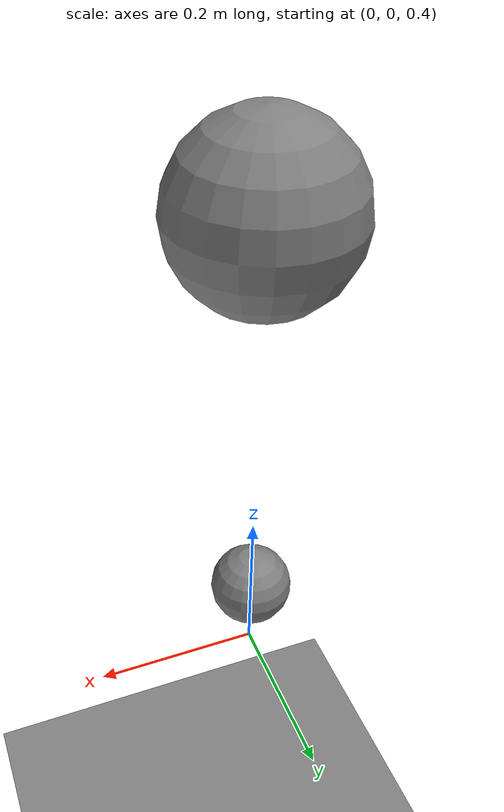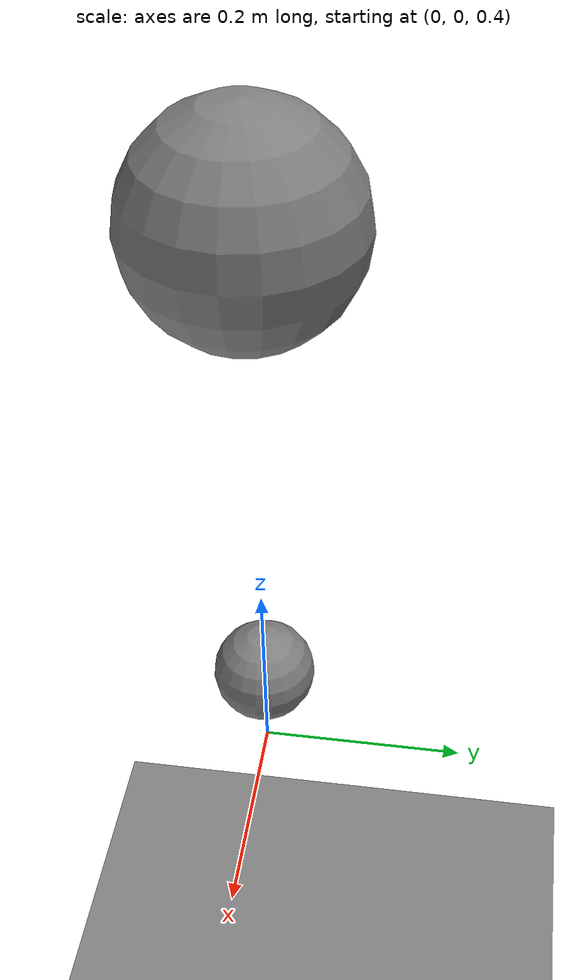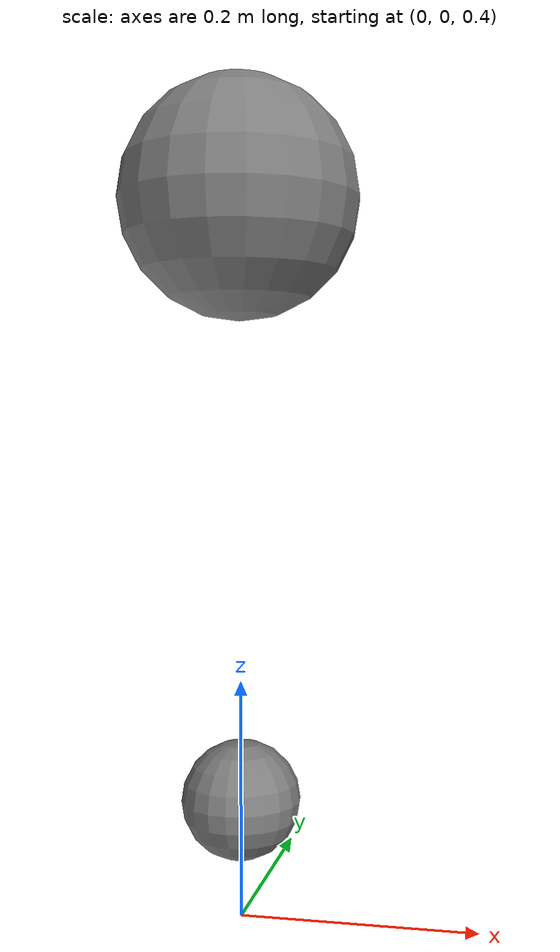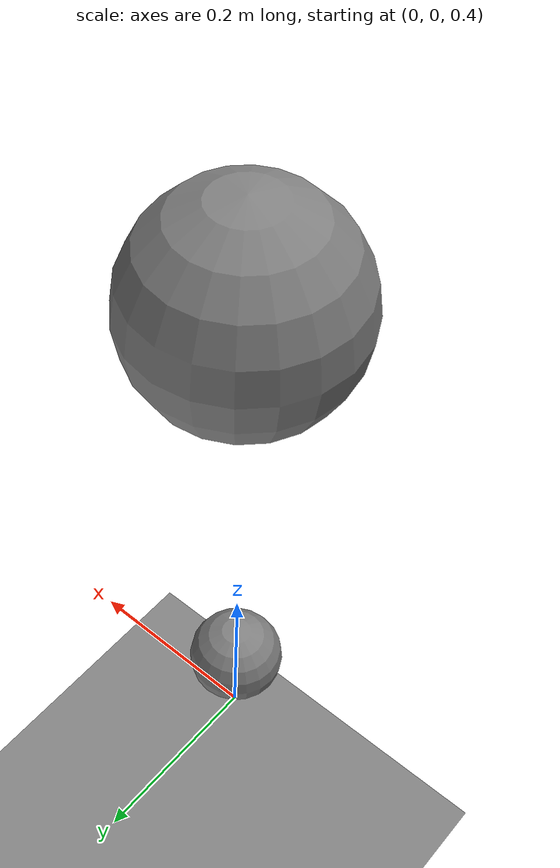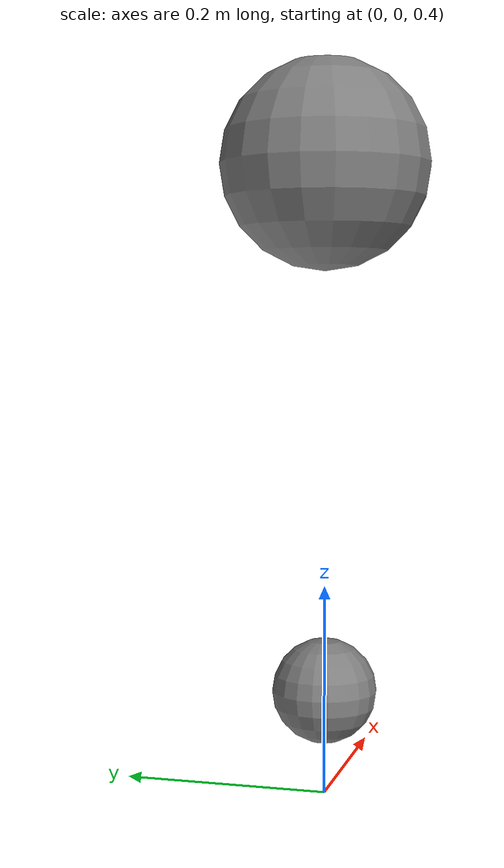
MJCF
<mujoco model="tendon_sleep">
        <option gravity="0 0 -9.81" timestep="0.002">
            <flag sleep="enable"/>
        </option>
        <worldbody>
            <geom type="plane" size="5 5 0.1"/>
            <body name="link1" pos="0 0 1">
                <joint name="j1" type="hinge" axis="0 1 0"/>
                <geom type="sphere" size="0.1" mass="1.0"/>
                <body name="link2" pos="0 0 -0.5">
                    <joint name="j2" type="hinge" axis="0 1 0"/>
                    <geom type="sphere" size="0.05" mass="0.5"/>
                </body>
            </body>
        </worldbody>
        <tendon>
            <fixed>
                <joint joint="j1" coef="1"/>
                <joint joint="j2" coef="-1"/>
            </fixed>
        </tendon>
    </mujoco>
